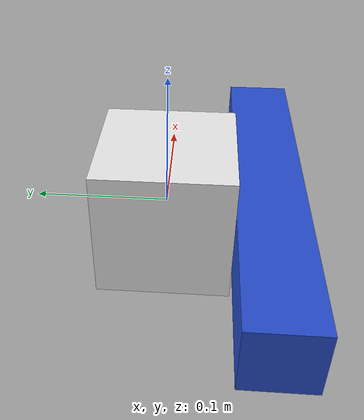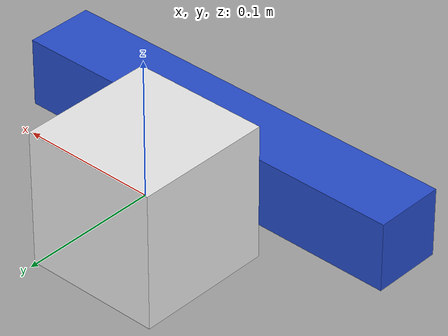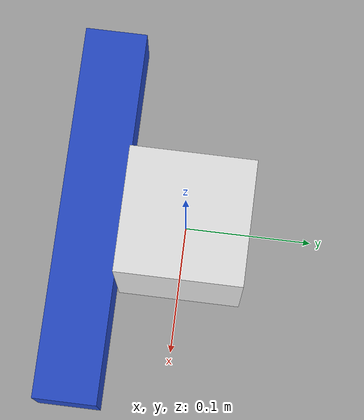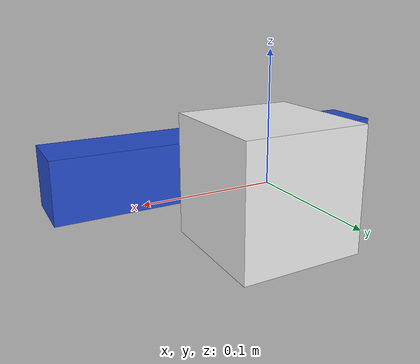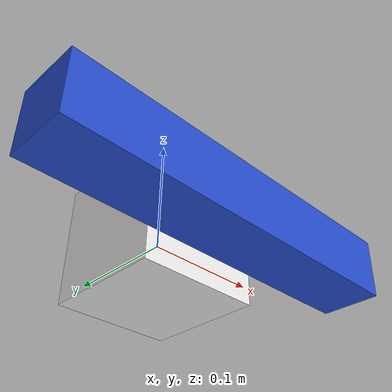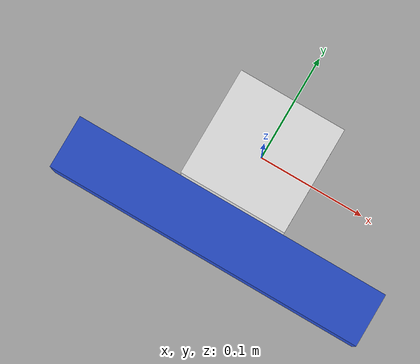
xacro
<?xml version="1.0"?>

<robot name="two_link" xmlns:xacro="http://ros.org/wiki/xacro">

  <!-- Property Definition: Referred to using ${property_name} -->
  <xacro:property name="box_name" value="robot" />
  <xacro:property name="mass" value="0.5" />

  <!-- Macro for the inertia of a box -->
  <xacro:macro name="box_inertia" params="x y z mass">
    <inertia ixx="${0.0833333 * mass * (y*y + z*z)}" ixy="0.0" ixz="0.0"
      iyy="${0.0833333 * mass * (x*x + z*z)}" iyz="0.0"
      izz="${0.0833333 * mass * (x*x + y*y)}" />
  </xacro:macro>

    <!-- Macro for the inertial properties of a box -->
  <xacro:macro name="box_inertial" params="x y z mass *origin">
    <inertial>
      <mass value="${mass}" />
      <xacro:insert_block name="origin" />
      <xacro:box_inertia x="${x}" y="${y}" z="${z}" mass="${mass}" />
    </inertial>
  </xacro:macro>

<!-- Link Definitions (Virtual Link) -->
<link name="${box_name}/base_link" />

<!-- Link Definitions (Actual Link) -->
<link name="${box_name}/box">
  <!-- Inertial block (uses box_inertial macro) -->
  <xacro:box_inertial x="0.1" y="0.1" z="0.1" mass="${mass}">
    <origin xyz="0 0 0" />
  </xacro:box_inertial>

  <!-- Visual block -->
  <visual>
    <origin xyz="0 0 0" rpy="0 0 0" />
    <geometry>
      <box size="0.1 0.1 0.1"/>
    </geometry>
  </visual>

  <!-- Collision block -->
  <collision>
    <origin xyz="0 0 0" rpy="0 0 0" />
    <geometry>
      <box size="0.1 0.1 0.1"/>
     </geometry>
  </collision>
</link>

  <!-- Gazebo specific properties for the box link -->
  <gazebo reference="${box_name}/box">
    <material>Gazebo/White</material>
      <mu1>5.01</mu1>
      <mu2>5.01</mu2>
  </gazebo>

  <!-- Joint between the virtual link and the actual link -->
  <joint name="${box_name}/base_joint" type="fixed">
    <origin xyz="0.0 0 0.0" rpy="0 0 0" />
    <parent link="${box_name}/base_link" />
    <child link="${box_name}/box" />
  </joint>

  <link name="${box_name}/arm">
    <!-- Visual block -->
    <visual>
      <origin xyz="0.0 0 0" rpy="0 0 0" />
      <geometry>
        <box size="0.3 0.05 0.05"/>
      </geometry>
    </visual>
    <!-- Collision block -->
    <collision>
      <origin xyz="0.0 0 0" rpy="0 0 0" />
      <geometry>
        <box size="0.3 0.05 0.05"/>
      </geometry>
    </collision>
    <!-- Inertial block (uses box_inertial macro) -->
    <xacro:box_inertial x="0.3" y="0.05" z="0.05" mass="${mass}">
      <origin xyz="0.0 0 0" />
    </xacro:box_inertial>
  </link>

  <!-- Joint between the first link and the new link -->
  <joint name="${box_name}/link_joint" type="revolute">
    <origin xyz="0.0 -0.075 0.0" rpy="0 0 0" />
    <parent link="${box_name}/box" />
    <child link="${box_name}/arm" />
    <axis xyz="0 1 0" />
    <limit lower="${-pi}" upper="${pi}" effort="10.01" velocity="1.01" />
    <dynamics damping="0.0" friction="0.1"/>
  </joint>
  <!-- Gazebo specific properties for the arm link -->
  <gazebo reference="${box_name}/arm">
    <material>Gazebo/Blue</material>
  </gazebo>

  <!-- Interface the plugin with the movable joints -->
  <ros2_control name="GazeboSystem" type="system">
    <hardware>
      <plugin>gz_ros2_control/GazeboSimSystem</plugin>
    </hardware>
    <joint name="${box_name}/link_joint">
      <command_interface name="position">
        <param name="min">-15</param>
        <param name="max">15</param>
      </command_interface>
      <state_interface name="position">
        <param name="initial_value">1.0</param>
      </state_interface>
      <state_interface name="velocity"/>
      <state_interface name="effort"/>
    </joint>
  </ros2_control>
  <!-- Gazebo plugin to enable control of joints -->

  <gazebo>
    <plugin name="gz_ros2_control::GazeboSimROS2ControlPlugin" filename="libgz_ros2_control-system.so">
      <robot_param_node>robot_state_publisher</robot_param_node>
      <parameters>/ros_ws/src/biorobotics_tutorial/models/config/two_link_config_1.yaml</parameters>
    </plugin>
  </gazebo>
</robot>
